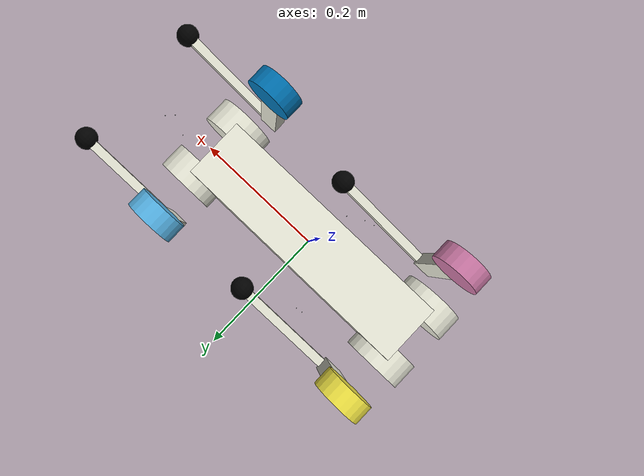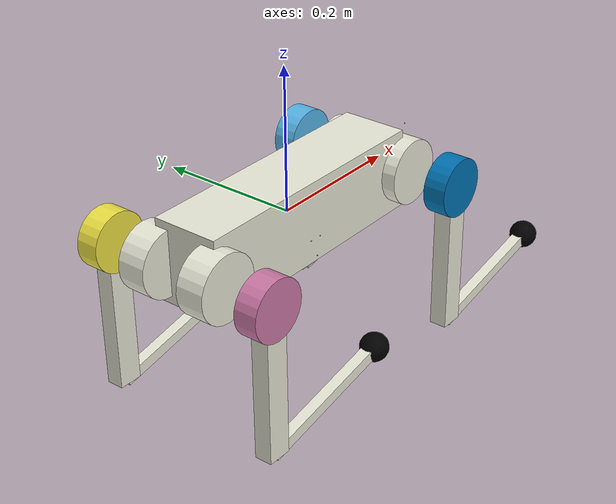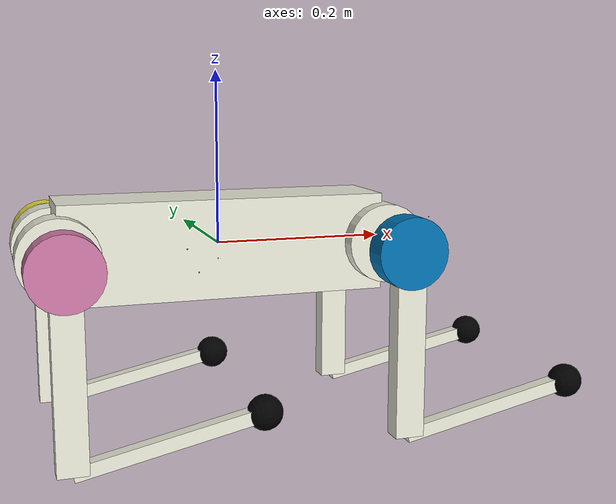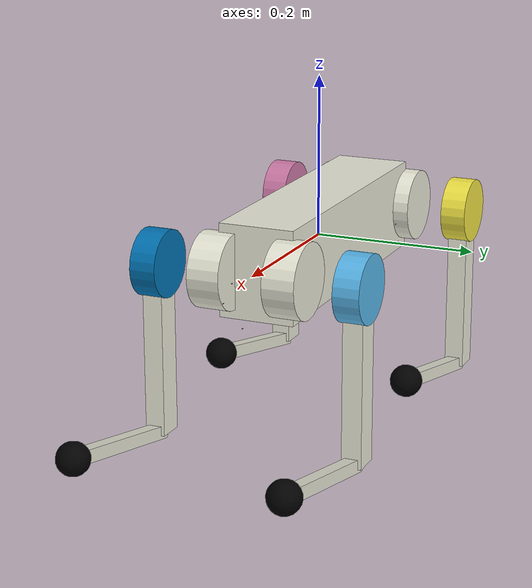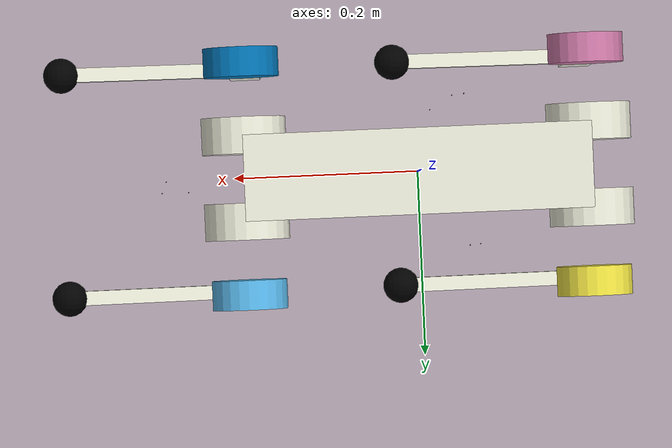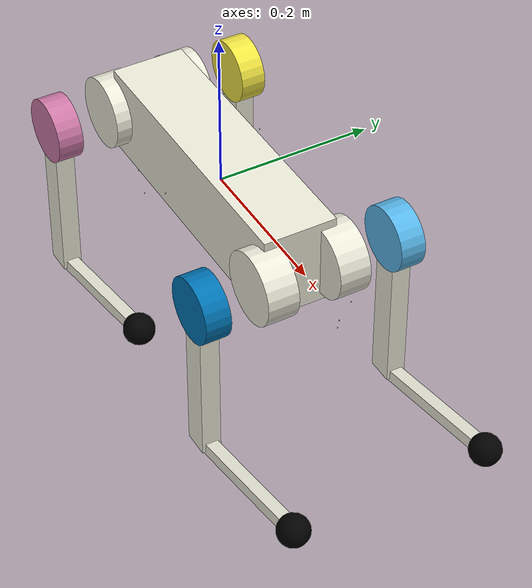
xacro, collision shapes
<?xml version="1.0"?>
<!-- TODO merge unitree_go1.urdf.xacro -->
<robot xmlns:xacro="http://www.ros.org/wiki/xacro" name="unitree_go1">
  <xacro:arg name="use_gazebo" default="true"/>
  <xacro:arg name="use_ros2_control" default="true"/>
  <xacro:arg name="use_gz" default="true"/>
  <xacro:arg name="ign_compatible" default="false"/>
  <!-- Enable depth camera simulation for ignition gazebo -->
  <xacro:arg name="enable_sensors_plugin" default="false"/>
  <xacro:arg name="enable_low_resolution_depth" default="true"/>
  <xacro:arg name="enable_unitree_depth_camera" default="true"/>
  <xacro:arg name="enable_backpack_mesh" default="false"/>
  <xacro:include filename="$(find unitree_go1_description)/urdf/const.xacro"/>
  <xacro:include filename="$(find unitree_go1_description)/urdf/materials.xacro"/>
  <xacro:if value="$(arg use_gazebo)">
    <xacro:include filename="$(find unitree_go1_description)/urdf/gazebo.xacro"/>
  </xacro:if>
  <xacro:include filename="$(find unitree_go1_description)/urdf/leg.xacro"/>
  <xacro:include filename="$(find unitree_go1_description)/urdf/depthCamera.xacro"/>
  <xacro:include filename="$(find unitree_go1_description)/urdf/ultraSound.xacro"/>
  <xacro:include filename="$(find unitree_go1_description)/urdf/ros2_control.xacro"/>
  <xacro:include filename="$(find unitree_go1_description)/urdf/backpack_sensor_unit.xacro"/>
  <!-- Rollover Protection mode will add an additional stick on the top, use "true" or "false" to switch it. -->
  <xacro:property name="rolloverProtection" value="false"/>
  <!-- Debug mode will hung up the robot, use "true" or "false" to switch it. -->
  <xacro:arg name="DEBUG" default="false"/>
  <link name="base_link">
    <visual>
      <origin rpy="0 0 0" xyz="0 0 0"/>
      <geometry>
        <box size="0.001 0.001 0.001"/>
      </geometry>
    </visual>
  </link>
  <joint name="floating_base_joint" type="fixed">
    <origin rpy="0 0 0" xyz="0 0 0"/>
    <parent link="base_link"/>
    <child link="trunk"/>
  </joint>
  <link name="trunk">
    <visual>
      <origin rpy="0 0 0" xyz="0 0 0"/>
      <geometry>
        <mesh filename="package://unitree_go1_description/meshes/visual/trunk.dae" scale="1 1 1"/>
      </geometry>
      <material name="silver"/>
    </visual>
    <collision>
      <origin rpy="0 0 0" xyz="0 0 0"/>
      <geometry>
        <box size="${trunk_length} ${trunk_width} ${trunk_height}"/>
      </geometry>
    </collision>
    <inertial>
      <origin rpy="0 0 0" xyz="${trunk_com_x} ${trunk_com_y} ${trunk_com_z}"/>
      <mass value="${trunk_mass}"/>
      <inertia ixx="${trunk_ixx}" ixy="${trunk_ixy}" ixz="${trunk_ixz}" iyy="${trunk_iyy}" iyz="${trunk_iyz}" izz="${trunk_izz}"/>
    </inertial>
  </link>
  <xacro:if value="${(rolloverProtection == 'true')}">
    <joint name="stick_joint" type="fixed">
      <parent link="trunk"/>
      <child link="stick_link"/>
      <origin rpy="0 0 0" xyz="${0.18} 0 ${stick_length/2.0+0.08}"/>
    </joint>
    <link name="stick_link">
      <visual>
        <geometry>
          <cylinder length="${stick_length}" radius="${stick_radius}"/>
        </geometry>
        <origin rpy="0 0 0" xyz="0 0 0"/>
        <material name="silver"/>
      </visual>
      <collision>
        <geometry>
          <cylinder length="${stick_length}" radius="${stick_radius}"/>
        </geometry>
        <origin rpy="0 0 0" xyz="0 0 0"/>
      </collision>
      <inertial>
        <mass value="${stick_mass}"/>
        <inertia ixx="${stick_mass / 2.0 * (stick_radius*stick_radius)}" ixy="0.0" ixz="0.0" iyy="${stick_mass / 12.0 * (3*stick_radius*stick_radius + stick_length*stick_length)}" iyz="0.0" izz="${stick_mass / 12.0 * (3*stick_radius*stick_radius + stick_length*stick_length)}"/>
      </inertial>
    </link>
  </xacro:if>
  <joint name="imu_joint" type="fixed">
    <parent link="trunk"/>
    <child link="imu_link"/>
    <origin rpy="0 0 0" xyz="-0.01592 -0.06659 -0.00617"/>
  </joint>
  <link name="imu_link">
    <inertial>
      <mass value="0.001"/>
      <origin rpy="0 0 0" xyz="0 0 0"/>
      <inertia ixx="0.0001" ixy="0" ixz="0" iyy="0.0001" iyz="0" izz="0.0001"/>
    </inertial>
    <visual>
      <origin rpy="0 0 0" xyz="0 0 0"/>
      <geometry>
        <box size="0.001 0.001 0.001"/>
      </geometry>
      <material name="black"/>
    </visual>
    <collision>
      <origin rpy="0 0 0" xyz="0 0 0"/>
      <geometry>
        <box size=".001 .001 .001"/>
      </geometry>
    </collision>
  </link>
  <xacro:leg name="fr" mirror="-1" mirror_dae="False" front_hind="1" front_hind_dae="True">
    <origin rpy="0 0 0" xyz="${leg_offset_x} ${-leg_offset_y} 0"/>
  </xacro:leg>
  <xacro:leg name="fl" mirror="1" mirror_dae="True" front_hind="1" front_hind_dae="True">
    <origin rpy="0 0 0" xyz="${leg_offset_x} ${leg_offset_y} 0"/>
  </xacro:leg>
  <xacro:leg name="rr" mirror="-1" mirror_dae="False" front_hind="-1" front_hind_dae="False">
    <origin rpy="0 0 0" xyz="${-leg_offset_x} ${-leg_offset_y} 0"/>
  </xacro:leg>
  <xacro:leg name="rl" mirror="1" mirror_dae="True" front_hind="-1" front_hind_dae="False">
    <origin rpy="0 0 0" xyz="${-leg_offset_x} ${leg_offset_y} 0"/>
  </xacro:leg>
  <xacro:depthCamera camID="1" name="face">
    <origin rpy="${PI} 0 0" xyz="0.2785 0.0125 0.0167"/>
  </xacro:depthCamera>
  <xacro:depthCamera camID="2" name="chin">
    <origin rpy="${PI} ${PI/2} 0" xyz="0.2522 0.0125 -0.0436"/>
  </xacro:depthCamera>
  <xacro:depthCamera camID="3" name="left">
    <origin rpy="${PI} 0.2618 ${PI/2}" xyz="-0.066 0.082 -0.0176"/>
  </xacro:depthCamera>
  <xacro:depthCamera camID="4" name="right">
    <origin rpy="${PI} 0.2618 ${-PI/2}" xyz="-0.041 -0.082 -0.0176"/>
  </xacro:depthCamera>
  <xacro:depthCamera camID="5" name="rearDown">
    <origin rpy="${PI} ${PI/2} 0" xyz="-0.0825 0.0125 -0.04365"/>
  </xacro:depthCamera>
  <joint name="camera_laserscan_left_joint" type="fixed">
    <origin rpy="0 0.2618 0" xyz="0 0 0"/>
    <parent link="camera_left"/>
    <child link="camera_laserscan_left_link"/>
  </joint>
  <link name="camera_laserscan_left_link">
    </link>
  <joint name="camera_laserscan_right_joint" type="fixed">
    <origin rpy="0 0.2618 0" xyz="0 0 0"/>
    <parent link="camera_right"/>
    <child link="camera_laserscan_right_link"/>
  </joint>
  <link name="camera_laserscan_right_link">
    </link>
  <xacro:ultraSound name="left">
    <origin rpy="0 0.2618 ${PI/2}" xyz="-0.0535  0.0826 0.00868"/>
  </xacro:ultraSound>
  <xacro:ultraSound name="right">
    <origin rpy="0 0.2618 ${-PI/2}" xyz="-0.0535 -0.0826 0.00868"/>
  </xacro:ultraSound>
  <xacro:ultraSound name="face">
    <origin rpy="0 0 0" xyz="0.2747 0.0 -0.0088"/>
  </xacro:ultraSound>
  <xacro:backpack_sensor_unit name="tc23" parent="base_link">
    <origin rpy="0 0 0" xyz="0 0 0"/>
  </xacro:backpack_sensor_unit>
</robot>

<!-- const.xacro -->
<robot xmlns:xacro="http://www.ros.org/wiki/xacro" name="unitree_go1">
  <!-- Constants for robot dimensions -->
  <xacro:property name="PI" value="3.1415926535897931"/>
  <xacro:property name="stick_mass" value="0.00001"/>
  <!-- simplified collision value -->
  <xacro:property name="trunk_width" value="0.0935"/>
  <xacro:property name="trunk_length" value="0.3762"/>
  <xacro:property name="trunk_height" value="0.114"/>
  <xacro:property name="hip_radius" value="0.046"/>
  <xacro:property name="hip_length" value="0.04"/>
  <xacro:property name="thigh_shoulder_radius" value="0.041"/>
  <xacro:property name="thigh_shoulder_length" value="0.032"/>
  <xacro:property name="thigh_width" value="0.0245"/>
  <xacro:property name="thigh_height" value="0.034"/>
  <xacro:property name="calf_width" value="0.016"/>
  <xacro:property name="calf_height" value="0.016"/>
  <xacro:property name="foot_radius" value="0.02"/>
  <xacro:property name="stick_radius" value="0.01"/>
  <xacro:property name="stick_length" value="0.2"/>
  <!-- kinematic value -->
  <xacro:property name="thigh_offset" value="0.08"/>
  <xacro:property name="thigh_length" value="0.213"/>
  <xacro:property name="calf_length" value="0.213"/>
  <!-- leg offset from trunk center value -->
  <xacro:property name="leg_offset_x" value="0.1881"/>
  <xacro:property name="leg_offset_y" value="0.04675"/>
  <xacro:property name="hip_offset" value="0.08"/>
  <!-- joint limits -->
  <xacro:property name="damping" value="0.01"/>
  <xacro:property name="friction" value="0.2"/>
  <xacro:property name="hip_max" value="60"/>
  <xacro:property name="hip_min" value="-60"/>
  <xacro:property name="hip_velocity_max" value="30.1"/>
  <xacro:property name="hip_torque_max" value="23.7"/>
  <xacro:property name="thigh_max" value="170"/>
  <xacro:property name="thigh_min" value="-38"/>
  <xacro:property name="thigh_velocity_max" value="30.1"/>
  <xacro:property name="thigh_torque_max" value="23.7"/>
  <xacro:property name="calf_max" value="-48"/>
  <xacro:property name="calf_min" value="-156"/>
  <xacro:property name="calf_velocity_max" value="30.1"/>
  <xacro:property name="calf_torque_max" value="23.7"/>
  <!-- dynamics inertial value        total 12.84kg -->
  <!-- trunk -->
  <xacro:property name="trunk_mass" value="5.204"/>
  <xacro:property name="trunk_com_x" value="0.0223"/>
  <xacro:property name="trunk_com_y" value="0.002"/>
  <xacro:property name="trunk_com_z" value="-0.0005"/>
  <xacro:property name="trunk_ixx" value="0.0168352186"/>
  <xacro:property name="trunk_ixy" value="0.0004636141"/>
  <xacro:property name="trunk_ixz" value="0.0002367952"/>
  <xacro:property name="trunk_iyy" value="0.0656071082"/>
  <xacro:property name="trunk_iyz" value="0.000036671"/>
  <xacro:property name="trunk_izz" value="0.0742720659"/>
  <!-- hip (left front) -->
  <xacro:property name="hip_mass" value="0.591"/>
  <xacro:property name="hip_com_x" value="-0.00541"/>
  <xacro:property name="hip_com_y" value="-0.00074"/>
  <xacro:property name="hip_com_z" value="0.000006"/>
  <xacro:property name="hip_ixx" value="0.000374268192"/>
  <xacro:property name="hip_ixy" value="0.000036844422"/>
  <xacro:property name="hip_ixz" value="-0.000000986754"/>
  <xacro:property name="hip_iyy" value="0.000635923669"/>
  <xacro:property name="hip_iyz" value="-0.000001172894"/>
  <xacro:property name="hip_izz" value="0.000457647394"/>
  <!-- thigh -->
  <xacro:property name="thigh_mass" value="0.92"/>
  <xacro:property name="thigh_com_x" value="-0.003468"/>
  <xacro:property name="thigh_com_y" value="-0.018947"/>
  <xacro:property name="thigh_com_z" value="-0.032736"/>
  <xacro:property name="thigh_ixx" value="0.005851561134"/>
  <xacro:property name="thigh_ixy" value="0.000001783284"/>
  <xacro:property name="thigh_ixz" value="0.000328291374"/>
  <xacro:property name="thigh_iyy" value="0.005596155105"/>
  <xacro:property name="thigh_iyz" value="0.000021430713"/>
  <xacro:property name="thigh_izz" value="0.00107157026"/>
  <!-- calf -->
  <xacro:property name="calf_mass" value="0.131"/>
  <xacro:property name="calf_com_x" value="0.006286"/>
  <xacro:property name="calf_com_y" value="0.001307"/>
  <xacro:property name="calf_com_z" value="-0.122269"/>
  <xacro:property name="calf_ixx" value="0.002939186297"/>
  <xacro:property name="calf_ixy" value="0.000001440899"/>
  <xacro:property name="calf_ixz" value="-0.000105359550"/>
  <xacro:property name="calf_iyy" value="0.00295576935"/>
  <xacro:property name="calf_iyz" value="-0.000024397752"/>
  <xacro:property name="calf_izz" value="0.000030273372"/>
  <!-- foot -->
  <xacro:property name="foot_mass" value="0.06"/>
  <!-- Gazebo simulation properties -->
  <xacro:property name="leg_link_kp" value="100.0"/>
  <xacro:property name="leg_link_kd" value="1.0"/>
  <xacro:property name="enable_self_collision_check" value="true"/>
  <xacro:property name="default_link_mu1" value="0.2"/>
  <xacro:property name="default_link_mu2" value="0.2"/>
  <xacro:property name="foot_link_mu1" value="0.6"/>
  <xacro:property name="foot_link_mu2" value="0.6"/>
</robot>

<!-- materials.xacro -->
<robot xmlns:xacro="http://www.ros.org/wiki/xacro">
  <material name="black">
    <color rgba="0.0 0.0 0.0 1.0"/>
  </material>
  <material name="blue">
    <color rgba="0.0 0.0 0.8 1.0"/>
  </material>
  <material name="green">
    <color rgba="0.0 0.8 0.0 1.0"/>
  </material>
  <material name="grey">
    <color rgba="0.2 0.2 0.2 1.0"/>
  </material>
  <material name="silver">
    <color rgba="${233/255} ${233/255} ${216/255} 1.0"/>
  </material>
  <material name="orange">
    <color rgba="${255/255} ${108/255} ${10/255} 1.0"/>
  </material>
  <material name="brown">
    <color rgba="${222/255} ${207/255} ${195/255} 1.0"/>
  </material>
  <material name="red">
    <color rgba="0.8 0.0 0.0 1.0"/>
  </material>
  <material name="white">
    <color rgba="1.0 1.0 1.0 1.0"/>
  </material>
</robot>

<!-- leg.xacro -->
<robot xmlns:xacro="http://www.ros.org/wiki/xacro">
  <xacro:include filename="$(find unitree_go1_description)/urdf/transmission.xacro"/>
  <xacro:macro name="leg" params="name mirror mirror_dae front_hind front_hind_dae *origin">
    <joint name="${name}_hip_joint" type="revolute">
      <xacro:insert_block name="origin"/>
      <parent link="trunk"/>
      <child link="${name}_hip"/>
      <axis xyz="1 0 0"/>
      <dynamics damping="${damping}" friction="${friction}"/>
      <xacro:if value="${(mirror_dae == True)}">
        <limit effort="${hip_torque_max}" velocity="${hip_velocity_max}" lower="${hip_min*PI/180.0}" upper="${hip_max*PI/180.0}"/>
      </xacro:if>
      <xacro:if value="${(mirror_dae == False)}">
        <limit effort="${hip_torque_max}" velocity="${hip_velocity_max}" lower="${-hip_max*PI/180.0}" upper="${-hip_min*PI/180.0}"/>
      </xacro:if>
    </joint>
    <link name="${name}_hip">
      <visual>
        <xacro:if value="${(mirror_dae == True) and (front_hind_dae == True)}">
          <origin rpy="0 0 0" xyz="0 0 0"/>
        </xacro:if>
        <xacro:if value="${(mirror_dae == False) and (front_hind_dae == True)}">
          <origin rpy="${PI} 0 0" xyz="0 0 0"/>
        </xacro:if>
        <xacro:if value="${(mirror_dae == True) and (front_hind_dae == False)}">
          <origin rpy="0 ${PI} 0" xyz="0 0 0"/>
        </xacro:if>
        <xacro:if value="${(mirror_dae == False) and (front_hind_dae == False)}">
          <origin rpy="${PI} ${PI} 0" xyz="0 0 0"/>
        </xacro:if>
        <geometry>
          <mesh filename="package://unitree_go1_description/meshes/visual/hip.dae" scale="1 1 1"/>
        </geometry>
        <material name="silver"/>
      </visual>
      <collision>
        <origin rpy="${PI/2.0} 0 0" xyz="0 0 0"/>
        <geometry>
          <cylinder length="${hip_length}" radius="${hip_radius}"/>
        </geometry>
      </collision>
      <inertial>
        <origin rpy="0 0 0" xyz="${hip_com_x*front_hind} ${hip_com_y*mirror} ${hip_com_z}"/>
        <mass value="${hip_mass}"/>
        <inertia ixx="${hip_ixx}" ixy="${hip_ixy*mirror*front_hind}" ixz="${hip_ixz*front_hind}" iyy="${hip_iyy}" iyz="${hip_iyz*mirror}" izz="${hip_izz}"/>
      </inertial>
    </link>
    <joint name="${name}_hip_fixed" type="fixed">
      <origin rpy="0 0 0" xyz="0 ${(hip_offset)*mirror} 0"/>
      <parent link="${name}_hip"/>
      <child link="${name}_thigh_shoulder"/>
    </joint>
    <!-- this link is only for collision -->
    <link name="${name}_thigh_shoulder">
      <collision>
        <origin rpy="${PI/2.0} 0 0" xyz="0 0 0"/>
        <geometry>
          <cylinder length="${thigh_shoulder_length}" radius="${thigh_shoulder_radius}"/>
        </geometry>
      </collision>
    </link>
    <joint name="${name}_thigh_joint" type="revolute">
      <origin rpy="0 0 0" xyz="0 ${thigh_offset*mirror} 0"/>
      <parent link="${name}_hip"/>
      <child link="${name}_thigh"/>
      <axis xyz="0 1 0"/>
      <dynamics damping="${damping}" friction="${friction}"/>
      <limit effort="${thigh_torque_max}" velocity="${thigh_velocity_max}" lower="${thigh_min*PI/180.0}" upper="${thigh_max*PI/180.0}"/>
    </joint>
    <link name="${name}_thigh">
      <visual>
        <origin rpy="0 0 0" xyz="0 0 0"/>
        <geometry>
          <xacro:if value="${mirror_dae == True}">
            <mesh filename="package://unitree_go1_description/meshes/visual/thigh.dae" scale="1 1 1"/>
          </xacro:if>
          <xacro:if value="${mirror_dae == False}">
            <mesh filename="package://unitree_go1_description/meshes/visual/thigh_mirror.dae" scale="1 1 1"/>
          </xacro:if>
        </geometry>
        <material name="silver"/>
      </visual>
      <collision>
        <origin rpy="0 ${PI/2.0} 0" xyz="0 0 ${-thigh_length/2.0}"/>
        <geometry>
          <box size="${thigh_length} ${thigh_width} ${thigh_height}"/>
        </geometry>
      </collision>
      <inertial>
        <origin rpy="0 0 0" xyz="${thigh_com_x} ${thigh_com_y*mirror} ${thigh_com_z}"/>
        <mass value="${thigh_mass}"/>
        <inertia ixx="${thigh_ixx}" ixy="${thigh_ixy*mirror}" ixz="${thigh_ixz}" iyy="${thigh_iyy}" iyz="${thigh_iyz*mirror}" izz="${thigh_izz}"/>
      </inertial>
    </link>
    <joint name="${name}_calf_joint" type="revolute">
      <origin rpy="0 0 0" xyz="0 0 ${-thigh_length}"/>
      <parent link="${name}_thigh"/>
      <child link="${name}_calf"/>
      <axis xyz="0 1 0"/>
      <dynamics damping="${damping}" friction="${friction}"/>
      <limit effort="${calf_torque_max}" velocity="${calf_velocity_max}" lower="${calf_min*PI/180.0}" upper="${calf_max*PI/180.0}"/>
    </joint>
    <link name="${name}_calf">
      <visual>
        <origin rpy="0 0 0" xyz="0 0 0"/>
        <geometry>
          <mesh filename="package://unitree_go1_description/meshes/visual/calf.dae" scale="1 1 1"/>
        </geometry>
        <material name="silver"/>
      </visual>
      <collision>
        <origin rpy="0 ${PI/2.0} 0" xyz="0 0 ${-calf_length/2.0}"/>
        <geometry>
          <box size="${calf_length} ${calf_width} ${calf_height}"/>
        </geometry>
      </collision>
      <inertial>
        <origin rpy="0 0 0" xyz="${calf_com_x} ${calf_com_y} ${calf_com_z}"/>
        <mass value="${calf_mass}"/>
        <inertia ixx="${calf_ixx}" ixy="${calf_ixy}" ixz="${calf_ixz}" iyy="${calf_iyy}" iyz="${calf_iyz}" izz="${calf_izz}"/>
      </inertial>
    </link>
    <joint name="${name}_foot_fixed" type="fixed">
      <origin rpy="0 0 0" xyz="0 0 ${-(calf_length)}"/>
      <parent link="${name}_calf"/>
      <child link="${name}_foot"/>
    </joint>
    <link name="${name}_foot">
      <visual>
        <origin rpy="0 0 0" xyz="0 0 0"/>
        <geometry>
          <sphere radius="${foot_radius-0.01}"/>
        </geometry>
        <material name="black"/>
      </visual>
      <collision>
        <origin rpy="0 0 0" xyz="0 0 0"/>
        <geometry>
          <sphere radius="${foot_radius}"/>
        </geometry>
      </collision>
      <inertial>
        <mass value="${foot_mass}"/>
        <inertia ixx="${(2*foot_mass)/5.0*(foot_radius*foot_radius)}" ixy="0.0" ixz="0.0" iyy="${(2*foot_mass)/5.0*(foot_radius*foot_radius)}" iyz="0.0" izz="${(2*foot_mass)/5.0*(foot_radius*foot_radius)}"/>
      </inertial>
    </link>
    <xacro:leg_transmission name="${name}"/>
    <xacro:if value="$(arg use_gazebo)">
      <xacro:leg_gazebo_configulation name="${name}"/>
    </xacro:if>
  </xacro:macro>
</robot>

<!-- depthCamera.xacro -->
<robot xmlns:xacro="http://www.ros.org/wiki/xacro">
  <xacro:macro name="depthCamera" params="camID name *origin">
    <joint name="camera_${name}_joint" type="fixed">
      <xacro:insert_block name="origin"/>
      <parent link="trunk"/>
      <child link="camera_${name}"/>
    </joint>
    <link name="camera_${name}">
      <collision>
        <origin xyz="0 0 0" rpy="0 0 0"/>
        <geometry>
          <box size=".001 .001 .001"/>
        </geometry>
      </collision>
      <visual>
        <origin xyz="0 0 0" rpy="0 0 0"/>
        <geometry>
          <mesh filename="package://unitree_go1_description/meshes/visual/depthCamera.dae" scale="1 1 1"/>
        </geometry>
        <material name="black"/>
      </visual>
      <inertial>
        <mass value="1e-5"/>
        <origin xyz="0 0 0" rpy="0 0 0"/>
        <inertia ixx="1e-6" ixy="0" ixz="0" iyy="1e-6" iyz="0" izz="1e-6"/>
      </inertial>
    </link>
    <joint name="camera_optical_${name}_joint" type="fixed">
      <origin xyz="0 0 0" rpy="${-pi/2} 0 ${-pi/2}"/>
      <parent link="camera_${name}"/>
      <child link="camera_optical_${name}"/>
    </joint>
    <link name="camera_optical_${name}">
    </link>
    <xacro:if value="$(arg enable_unitree_depth_camera)">
      <xacro:if value="$(arg use_gazebo)">
        <xacro:depth_camera_gazebo_configulation name="${name}"/>
      </xacro:if>
    </xacro:if>
  </xacro:macro>
</robot>

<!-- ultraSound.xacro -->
<robot xmlns:xacro="http://www.ros.org/wiki/xacro">
  <xacro:macro name="ultraSound" params="name *origin">
    <joint name="ultraSound_${name}_joint" type="fixed">
      <xacro:insert_block name="origin"/>
      <parent link="trunk"/>
      <child link="ultraSound_${name}"/>
    </joint>
    <link name="ultraSound_${name}">
      <collision>
        <origin xyz="0 0 0" rpy="0 0 0"/>
        <geometry>
          <box size=".001 .001 .001"/>
        </geometry>
      </collision>
      <visual>
        <origin xyz="0 0 0" rpy="0 0 0"/>
        <geometry>
          <mesh filename="package://unitree_go1_description/meshes/visual/ultraSound.dae" scale="1 1 1"/>
        </geometry>
        <material name="black"/>
      </visual>
      <inertial>
        <mass value="1e-5"/>
        <origin xyz="0 0 0" rpy="0 0 0"/>
        <inertia ixx="1e-6" ixy="0" ixz="0" iyy="1e-6" iyz="0" izz="1e-6"/>
      </inertial>
    </link>
    <xacro:if value="$(arg use_gazebo)">
      <xacro:ultrasound_gazebo_configulation name="${name}"/>
    </xacro:if>
  </xacro:macro>
</robot>

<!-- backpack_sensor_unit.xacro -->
<robot xmlns:xacro="http://www.ros.org/wiki/xacro" name="backpack_sensor_unit">
  <xacro:macro name="backpack_sensor_unit" params="*origin name parent">
    <link name="${name}_backpack_link"/>
    <joint name="${name}_backpack_joint" type="fixed">
      <xacro:insert_block name="origin"/>
      <parent link="${parent}"/>
      <child link="${name}_backpack_link"/>
    </joint>
    <link name="${name}_battery_link">
      <inertial>
        <mass value="8.767632300488609"/>
        <inertia ixx="0.06126696006101956" ixy="4.711204724242339e-05" ixz="-9.167542969046849e-06" iyy="0.03905584292622434" iyz="-0.0014004731761035145" izz="0.06984351344778704"/>
      </inertial>
      <xacro:if value="$(arg enable_backpack_mesh)">
        <collision name="${name}_battery_collision">
          <geometry>
            <mesh filename="package://unitree_go1_description/meshes/visual/units/jetson_battery_unit.stl" scale="0.001 0.001 0.001"/>
          </geometry>
        </collision>
        <visual name="${name}_battery_visual">
          <origin rpy="0.0 0.0 1.5707963" xyz="0.0 0.031 0.0"/>
          <geometry>
            <mesh filename="package://unitree_go1_description/meshes/visual/units/jetson_battery_unit.stl" scale="0.001 0.001 0.001"/>
          </geometry>
        </visual>
      </xacro:if>
    </link>
    <joint name="${name}_backpack_base_to_battery_joint" type="fixed">
      <origin rpy="0 0 0" xyz="-0.01 0.0 0.070026"/>
      <parent link="${name}_backpack_link"/>
      <child link="${name}_battery_link"/>
    </joint>
    <link name="${name}_velodyne_mounter_link">
      <inertial>
        <mass value="3.6310263427138576"/>
        <inertia ixx="0.018493836466625727" ixy="3.8771340018012124e-05" ixz="0.00030427183935978963" iyy="0.018520472548910264" iyz="-0.00023373891574015034" izz="0.014387662209449138"/>
      </inertial>
      <xacro:if value="$(arg enable_backpack_mesh)">
        <collision name="${name}_velodyne_mounter_collision">
          <geometry>
            <mesh filename="package://unitree_go1_description/meshes/visual/units/velodyne_mount.stl" scale="0.001 0.001 0.001"/>
          </geometry>
        </collision>
        <visual name="${name}_velodyne_mounter_visual">
          <origin rpy="0.0 0.0 1.5707963" xyz="0.26908 -0.15 -0.1"/>
          <geometry>
            <mesh filename="package://unitree_go1_description/meshes/visual/units/velodyne_mount.stl" scale="0.001 0.001 0.001"/>
          </geometry>
        </visual>
      </xacro:if>
    </link>
    <joint name="${name}_backpack_base_to_velodyne_mounter_joint" type="fixed">
      <origin rpy="0 0 0" xyz="0.18092 0.0 0.105"/>
      <parent link="${name}_backpack_link"/>
      <child link="${name}_velodyne_mounter_link"/>
    </joint>
    <link name="velodyne">
      <inertial>
        <mass value="5.620809494767195"/>
        <inertia ixx="0.03055115239540828" ixy="-8.623613783188977e-08" ixz="-5.321297214757923e-07" iyy="0.007113943066266983" iyz="0.002075435771374896" izz="0.030423249129034515"/>
      </inertial>
      <xacro:if value="$(arg enable_backpack_mesh)">
        <collision name="${name}_velodyne_vlp32c_collision">
          <geometry>
            <mesh filename="package://unitree_go1_description/meshes/visual/units/velodyne_vlp32c.stl" scale="0.001 0.001 0.001"/>
          </geometry>
        </collision>
        <visual name="${name}_velodyne_vlp32c_visual">
          <origin rpy="1.5707963 0.0 3.1415926" xyz="0.0 0.0 -0.0373"/>
          <geometry>
            <mesh filename="package://unitree_go1_description/meshes/visual/units/velodyne_vlp32c.stl" scale="0.001 0.001 0.001"/>
          </geometry>
        </visual>
      </xacro:if>
    </link>
    <joint name="${name}_mounter_to_vlp32c_joint" type="fixed">
      <origin rpy="0 0 0" xyz="0.0 0.0 0.0273"/>
      <parent link="${name}_velodyne_mounter_link"/>
      <child link="velodyne"/>
    </joint>
    <link name="${name}_d455_mounter_backet_link">
      <inertial>
        <mass value="0.2506230664456085"/>
        <inertia ixx="0.0005884168747731849" ixy="2.1746493494845255e-18" ixz="2.761679773755077e-18" iyy="0.0014843471434139303" iyz="1.1641604934681028e-06" izz="0.0009056110680280348"/>
      </inertial>
      <xacro:if value="$(arg enable_backpack_mesh)">
        <collision name="${name}_d455_mounter_backet_collision">
          <geometry>
            <mesh filename="package://unitree_go1_description/meshes/visual/units/velodyne_d455_mount_bkt.stl" scale="0.001 0.001 0.001"/>
          </geometry>
        </collision>
        <visual name="${name}_d455_mounter_backet_visual">
          <origin rpy="0.0 0.0 -1.5707963" xyz="0 0 0"/>
          <geometry>
            <mesh filename="package://unitree_go1_description/meshes/visual/units/velodyne_d455_mount_bkt.stl" scale="0.001 0.001 0.001"/>
          </geometry>
        </visual>
      </xacro:if>
    </link>
    <joint name="${name}_mounter_to_d455_joint" type="fixed">
      <origin rpy="0 0 0" xyz="0.025365 0.0 0.100"/>
      <parent link="${name}_velodyne_mounter_link"/>
      <child link="${name}_d455_mounter_backet_link"/>
    </joint>
    <link name="${name}_d455_mounter_link">
      <inertial>
        <mass value="0.3924756903563825"/>
        <inertia ixx="0.0002316134205913613" ixy="5.5047668617858034e-12" ixz="5.936616526147631e-12" iyy="0.001074683458664822" iyz="6.378256464190031e-05" izz="0.0010780788921107315"/>
      </inertial>
      <xacro:if value="$(arg enable_backpack_mesh)">
        <collision name="${name}_d455_mounter_collision">
          <geometry>
            <mesh filename="package://unitree_go1_description/meshes/visual/units/d455_mount.stl" scale="0.001 0.001 0.001"/>
          </geometry>
        </collision>
        <visual name="${name}_d455_mounter_visual">
          <origin rpy="0.0 3.1415926 -1.5707963" xyz="0.015 -0.065 0.0"/>
          <geometry>
            <mesh filename="package://unitree_go1_description/meshes/visual/units/d455_mount.stl" scale="0.001 0.001 0.001"/>
          </geometry>
        </visual>
      </xacro:if>
    </link>
    <joint name="${name}_backet_to_d455_mounter_joint" type="fixed">
      <origin rpy="0 0 0" xyz="0.0 0.0 0.1615"/>
      <parent link="${name}_d455_mounter_backet_link"/>
      <child link="${name}_d455_mounter_link"/>
    </joint>
    <link name="d455_link">
      <inertial>
        <mass value="0.43067862994478956"/>
        <inertia ixx="4.913461807418571e-05" ixy="7.570359531246379e-07" ixz="1.0438218786212872e-08" iyy="0.0005489980557036461" iyz="-2.520957209185326e-07" izz="0.000540422658218877"/>
      </inertial>
      <xacro:if value="$(arg enable_backpack_mesh)">
        <collision name="${name}_d455_collision">
          <geometry>
            <mesh filename="package://unitree_go1_description/meshes/visual/units/d455.stl" scale="0.001 0.001 0.001"/>
          </geometry>
        </collision>
        <visual name="${name}_d455_visual">
          <origin rpy="1.5707963 0.0 1.5707963" xyz="0.0 0.0 0.0"/>
          <geometry>
            <mesh filename="package://unitree_go1_description/meshes/visual/units/d455.stl" scale="0.001 0.001 0.001"/>
          </geometry>
        </visual>
      </xacro:if>
    </link>
    <joint name="${name}_d455_mounter_to_d455_joint" type="fixed">
      <origin rpy="0 0 0" xyz="0.044 0.0 -0.0215"/>
      <parent link="${name}_d455_mounter_link"/>
      <child link="d455_link"/>
    </joint>
  </xacro:macro>
</robot>
